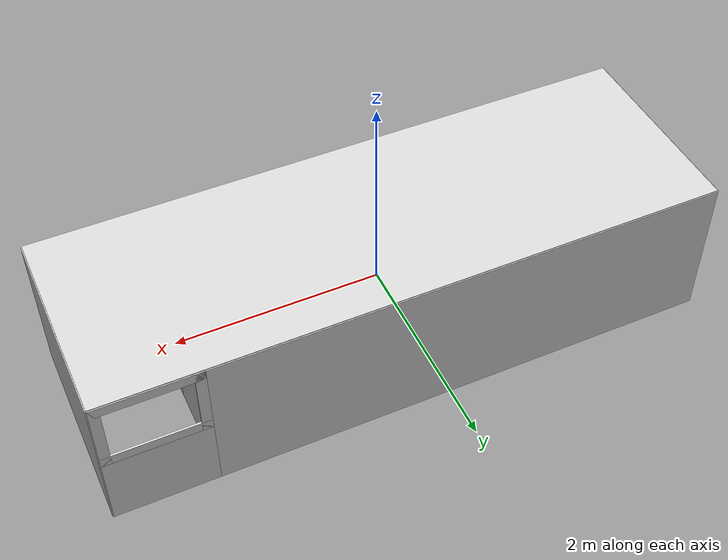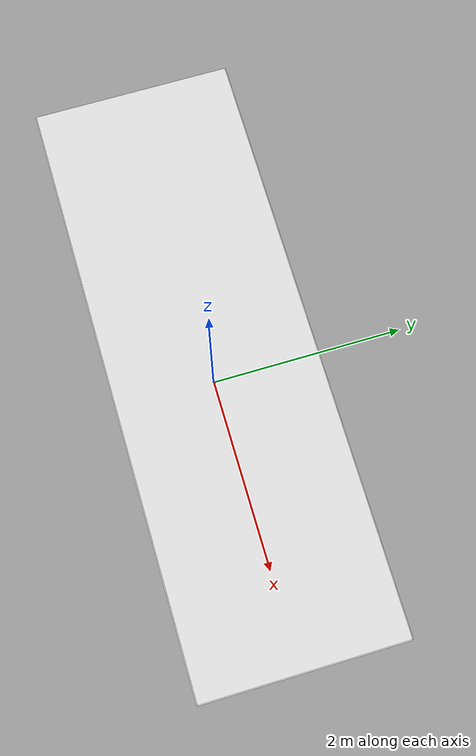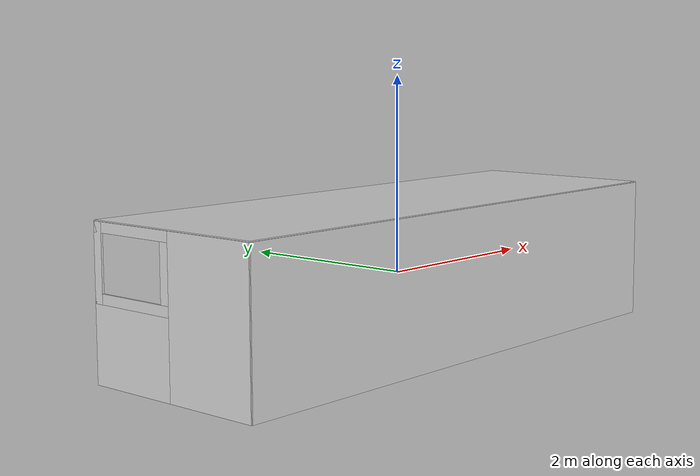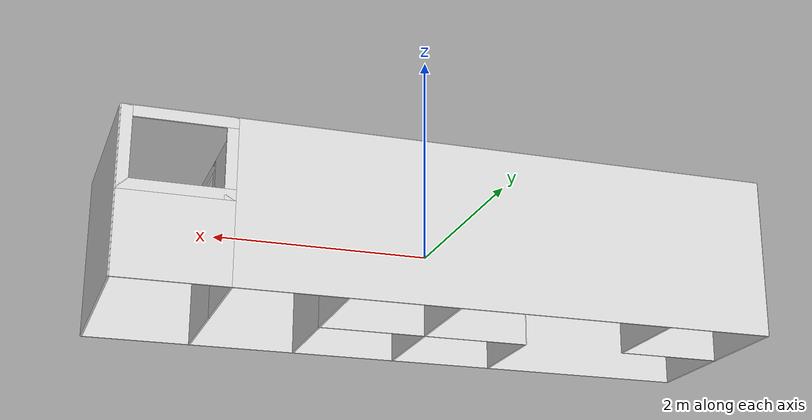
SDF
<?xml version='1.0' encoding='utf-8'?>
<sdf version='1.10'>
  <model name='wall'>
    <pose>0 0 0 0 0 0</pose>

    <include>
      <name>wall_1</name>
      <uri>models/phase_4_enviroment/walls/wall_6</uri>
      <pose>0 -1 0 0 0 1.5708</pose>
    </include>

    <include>
      <name>wall_2</name>
      <uri>models/phase_4_enviroment/walls/wall_1</uri>
      <pose>-3 -0.5 0 0 0 0</pose>
    </include>

    <include>
      <name>wall_3</name>
      <uri>models/phase_4_enviroment/walls/wall_1</uri>
      <pose>-1 -0.5 0 0 0 0</pose>
    </include>

    <include>
      <name>wall_4</name>
      <uri>models/phase_4_enviroment/walls/wall_1</uri>
      <pose>1 -0.5 0 0 0 0</pose>
    </include>

    <include>
      <name>wall_5</name>
      <uri>models/phase_4_enviroment/walls/wall_2</uri>
      <pose>3 0 0 0 0 0</pose>
    </include>

    <include>
      <name>wall_6</name>
      <uri>models/phase_4_enviroment/walls/wall_1</uri>
      <pose>-2 0.5 0 0 0 0</pose>
    </include>

    <include>
      <name>wall_7</name>
      <uri>models/phase_4_enviroment/walls/wall_1</uri>
      <pose>0 0.5 0 0 0 0</pose>
    </include>

    <include>
      <name>wall_8</name>
      <uri>models/phase_4_enviroment/walls/wall_1</uri>
      <pose>2 0.5 0 0 0 0</pose>
    </include>

    <include>
      <name>wall_9</name>
      <uri>models/phase_4_enviroment/walls/wall_5</uri>
      <pose>-0.5 1 0 0 0  1.5708</pose>
    </include>

    <include>
      <name>window_1</name>
      <uri>models/phase_4_enviroment/window</uri>
      <pose>-3 0.5 0 0 0 0</pose>
    </include>

    <include>
      <name>window_2</name>
      <uri>models/phase_4_enviroment/window</uri>
      <pose>-2.5 0 0 0 0 1.5708</pose>
    </include>

    <include>
      <name>window_3</name>
      <uri>models/phase_4_enviroment/window</uri>
      <pose>-0.5 0 0 0 0 1.5708</pose>
    </include>

    <include>
      <name>window_4</name>
      <uri>models/phase_4_enviroment/window</uri>
      <pose>0 -0.5 0 0 0 0</pose>
    </include>

    <include>
      <name>window_5</name>
      <uri>models/phase_4_enviroment/window</uri>
      <pose>0.5 0 0 0 0 1.5708</pose>
    </include>

    <include>
      <name>window_6</name>
      <uri>models/phase_4_enviroment/window</uri>
      <pose>1 0.5 0 0 0 0</pose>
    </include>

    <include>
      <name>window_7</name>
      <uri>models/phase_4_enviroment/window</uri>
      <pose>2 -0.5 0 0 0 0</pose>
    </include>

    <include>
      <name>window_8</name>
      <uri>models/phase_4_enviroment/window</uri>
      <pose>2.5 1 0 0 0 1.5708</pose>
    </include>

    <include>
      <name>ceiling</name>
      <uri>models/phase_4_enviroment/ceiling</uri>
      <pose>0 0 0.75 0 0 0</pose>
    </include>

    <static>true</static>
    <self_collide>false</self_collide>
  </model>
</sdf>

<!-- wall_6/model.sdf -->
<sdf version='1.10'>
  <model name='wall'>
    <pose>0 0 0 0 0 0</pose>
    <link name='box_link'>
      <collision name='box_collision'>
        <geometry>
          <box>
            <size>0.02 6 1.5</size>
          </box>
        </geometry>
        <surface>
          <friction>
            <ode/>
          </friction>
          <bounce/>
          <contact/>
        </surface>
      </collision>
      <visual name='box_visual'>
        <geometry>
          <box>
            <size>0.02 6 1.5</size>
          </box>
        </geometry>
        <material>
          <ambient>0.827 0.827 0.827 1.0</ambient>
          <diffuse>0.827 0.827 0.827 1.0</diffuse>
          <specular>0.827 0.827 0.827 1.0</specular>
        </material>
        <cast_shadows>false</cast_shadows>
      </visual>
      <pose>0 0 0 0 0 0</pose>
      <enable_wind>false</enable_wind>
    </link>
    <static>true</static>
    <self_collide>false</self_collide>
  </model>
</sdf>

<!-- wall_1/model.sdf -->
<sdf version='1.10'>
  <model name='wall'>
    <pose>0 0 0 0 0 0</pose>
    <link name='box_link'>
      <collision name='box_collision'>
        <geometry>
          <box>
            <size>0.02 1 1.5</size>
          </box>
        </geometry>
        <surface>
          <friction>
            <ode/>
          </friction>
          <bounce/>
          <contact/>
        </surface>
      </collision>
      <visual name='box_visual'>
        <geometry>
          <box>
            <size>0.02 1 1.5</size>
          </box>
        </geometry>
        <material>
          <ambient>0.827 0.827 0.827 1.0</ambient>
          <diffuse>0.827 0.827 0.827 1.0</diffuse>
          <specular>0.827 0.827 0.827 1.0</specular>
        </material>
        <cast_shadows>false</cast_shadows>
      </visual>
      <pose>0 0 0 0 0 0</pose>
      <enable_wind>false</enable_wind>
    </link>
    <static>true</static>
    <self_collide>false</self_collide>
  </model>
</sdf>

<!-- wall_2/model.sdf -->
<sdf version='1.10'>
  <model name='wall'>
    <pose>0 0 0 0 0 0</pose>
    <link name='box_link'>
      <collision name='box_collision'>
        <geometry>
          <box>
            <size>0.02 2 1.5</size>
          </box>
        </geometry>
        <surface>
          <friction>
            <ode/>
          </friction>
          <bounce/>
          <contact/>
        </surface>
      </collision>
      <visual name='box_visual'>
        <geometry>
          <box>
            <size>0.02 2 1.5</size>
          </box>
        </geometry>
        <material>
          <ambient>0.827 0.827 0.827 1.0</ambient>
          <diffuse>0.827 0.827 0.827 1.0</diffuse>
          <specular>0.827 0.827 0.827 1.0</specular>
        </material>
        <cast_shadows>false</cast_shadows>
      </visual>
      <pose>0 0 0 0 0 0</pose>
      <enable_wind>false</enable_wind>
    </link>
    <static>true</static>
    <self_collide>false</self_collide>
  </model>
</sdf>

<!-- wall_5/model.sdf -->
<sdf version='1.10'>
  <model name='wall'>
    <pose>0 0 0 0 0 0</pose>
    <link name='box_link'>
      <collision name='box_collision'>
        <geometry>
          <box>
            <size>0.02 5 1.5</size>
          </box>
        </geometry>
        <surface>
          <friction>
            <ode/>
          </friction>
          <bounce/>
          <contact/>
        </surface>
      </collision>
      <visual name='box_visual'>
        <geometry>
          <box>
            <size>0.02 5 1.5</size>
          </box>
        </geometry>
        <material>
          <ambient>0.827 0.827 0.827 1.0</ambient>
          <diffuse>0.827 0.827 0.827 1.0</diffuse>
          <specular>0.827 0.827 0.827 1.0</specular>
        </material>
        <cast_shadows>false</cast_shadows>
      </visual>
      <pose>0 0 0 0 0 0</pose>
      <enable_wind>false</enable_wind>
    </link>
    <static>true</static>
    <self_collide>false</self_collide>
  </model>
</sdf>

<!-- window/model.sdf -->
<sdf version='1.10'>
  <model name='wall'>
    <pose>0 0 0 0 0 0</pose>
    <link name='box_link'>
      <collision name='box_collision_low'>
        <pose>0 0 -0.375 0 0 0</pose>
        <geometry>
          <box>
            <size>0.02 1 0.75</size>
          </box>
        </geometry>
        <surface>
          <friction>
            <ode/>
          </friction>
          <bounce/>
          <contact/>
        </surface>
      </collision>

      <collision name='box_collision_down'>
        <pose>0 0 0.05 0 0 0</pose>
        <geometry>
          <box>
            <size>0.02 1 0.1</size>
          </box>
        </geometry>
        <surface>
          <friction>
            <ode/>
          </friction>
          <bounce/>
          <contact/>
        </surface>
      </collision>

      <collision name='box_collision_right'>
        <pose>0 0.45 0.375 0 0 0</pose>
        <geometry>
          <box>
            <size>0.02 0.1 0.75</size>
          </box>
        </geometry>
        <surface>
          <friction>
            <ode/>
          </friction>
          <bounce/>
          <contact/>
        </surface>
      </collision>

      <collision name='box_collision_left'>
        <pose>0 -0.45 0.375 0 0 0</pose>
        <geometry>
          <box>
            <size>0.02 0.1 0.75</size>
          </box>
        </geometry>
        <surface>
          <friction>
            <ode/>
          </friction>
          <bounce/>
          <contact/>
        </surface>
      </collision>

      <collision name='box_collision_up'>
        <pose>0 0 0.70 0 0 0</pose>
        <geometry>
          <box>
            <size>0.02 1.0 0.1</size>
          </box>
        </geometry>
        <surface>
          <friction>
            <ode/>
          </friction>
          <bounce/>
          <contact/>
        </surface>
      </collision>

      <visual name='box_visual_low'>
        <pose>0 0 -0.375 0 0 0</pose>
        <geometry>
          <box>
            <size>0.02 1 0.75</size>
          </box>
        </geometry>
        <material>
          <ambient>0.827 0.827 0.827 1.0</ambient>
          <diffuse>0.827 0.827 0.827 1.0</diffuse>
          <specular>0.827 0.827 0.827 1.0</specular>
        </material>
        <cast_shadows>false</cast_shadows>
      </visual>

      <visual name='box_visual_down'>
        <pose>0 0 0.05 0 0 0</pose>
        <geometry>
          <box>
            <size>0.02 1 0.1</size>
          </box>
        </geometry>
        <material>
          <ambient>0.827 0.827 0.827 1.0</ambient>
          <diffuse>0.827 0.827 0.827 1.0</diffuse>
          <specular>0.827 0.827 0.827 1.0</specular>
        </material>
        <cast_shadows>false</cast_shadows>
      </visual>

      <visual name='box_visual_right'>
        <pose>0 0.45 0.375 0 0 0</pose>
        <geometry>
          <box>
            <size>0.02 0.1 0.75</size>
          </box>
        </geometry>
        <material>
          <ambient>0.827 0.827 0.827 1.0</ambient>
          <diffuse>0.827 0.827 0.827 1.0</diffuse>
          <specular>0.827 0.827 0.827 1.0</specular>
        </material>
        <cast_shadows>false</cast_shadows>
      </visual>

      <visual name='box_visual_left'>
        <pose>0 -0.45 0.375 0 0 0</pose>
        <geometry>
          <box>
            <size>0.02 0.1 0.75</size>
          </box>
        </geometry>
        <material>
          <ambient>0.827 0.827 0.827 1.0</ambient>
          <diffuse>0.827 0.827 0.827 1.0</diffuse>
          <specular>0.827 0.827 0.827 1.0</specular>
        </material>
        <cast_shadows>false</cast_shadows>
      </visual>

      <visual name='box_visual_up'>
        <pose>0 0 0.70 0 0 0</pose>
        <geometry>
          <box>
            <size>0.02 1.0 0.1</size>
          </box>
        </geometry>
        <material>
          <ambient>0.827 0.827 0.827 1.0</ambient>
          <diffuse>0.827 0.827 0.827 1.0</diffuse>
          <specular>0.827 0.827 0.827 1.0</specular>
        </material>
        <cast_shadows>false</cast_shadows>
      </visual>

      <pose>0 0 0 0 0 0</pose>
      <enable_wind>false</enable_wind>
    </link>
    <static>true</static>
    <self_collide>false</self_collide>
  </model>
</sdf>

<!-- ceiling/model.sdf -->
<sdf version='1.10'>
  <model name='wall'>
    <pose>0 0 0 0 0 0</pose>
    <link name='box_link'>
      <collision name='box_collision'>
        <geometry>
          <box>
            <size>6 2 0.02</size>
          </box>
        </geometry>
        <surface>
          <friction>
            <ode/>
          </friction>
          <bounce/>
          <contact/>
        </surface>
      </collision>
      <visual name='box_visual'>
        <geometry>
          <box>
            <size>6 2 0.02</size>
          </box>
        </geometry>
        <material>
          <ambient>0.827 0.827 0.827 1.0</ambient>
          <diffuse>0.827 0.827 0.827 1.0</diffuse>
          <specular>0.827 0.827 0.827 1.0</specular>
        </material>
        <cast_shadows>false</cast_shadows>
      </visual>
      <pose>0 0 0 0 0 0</pose>
      <enable_wind>false</enable_wind>
    </link>
    <static>true</static>
    <self_collide>false</self_collide>
  </model>
</sdf>
